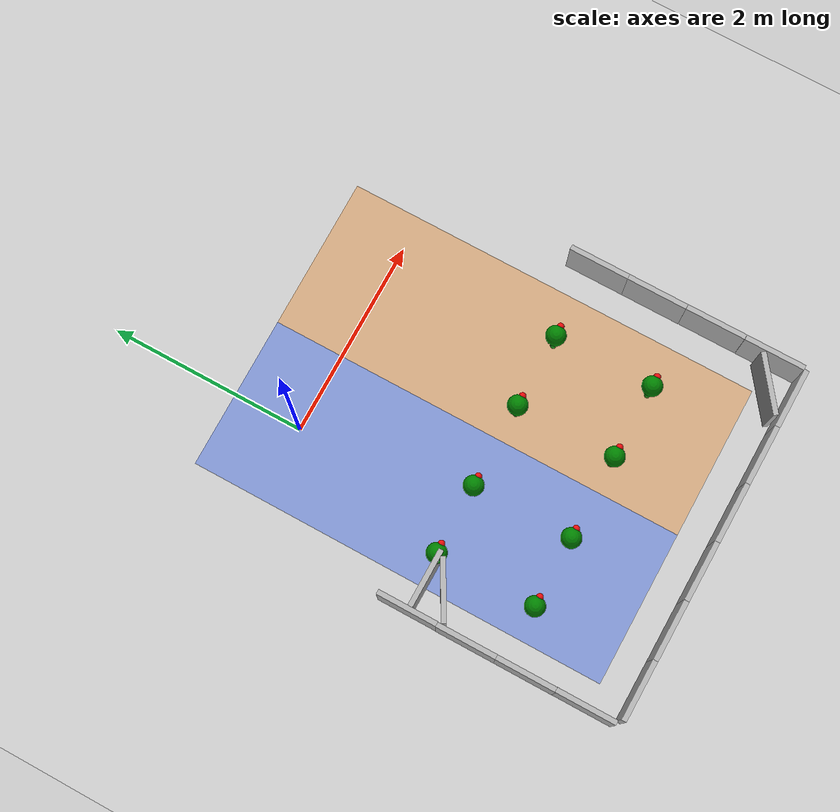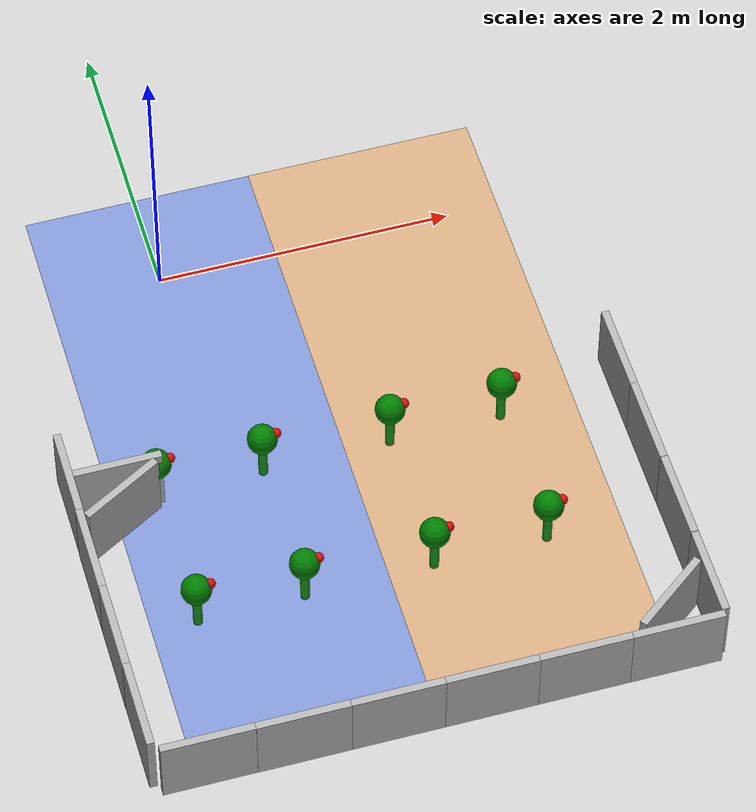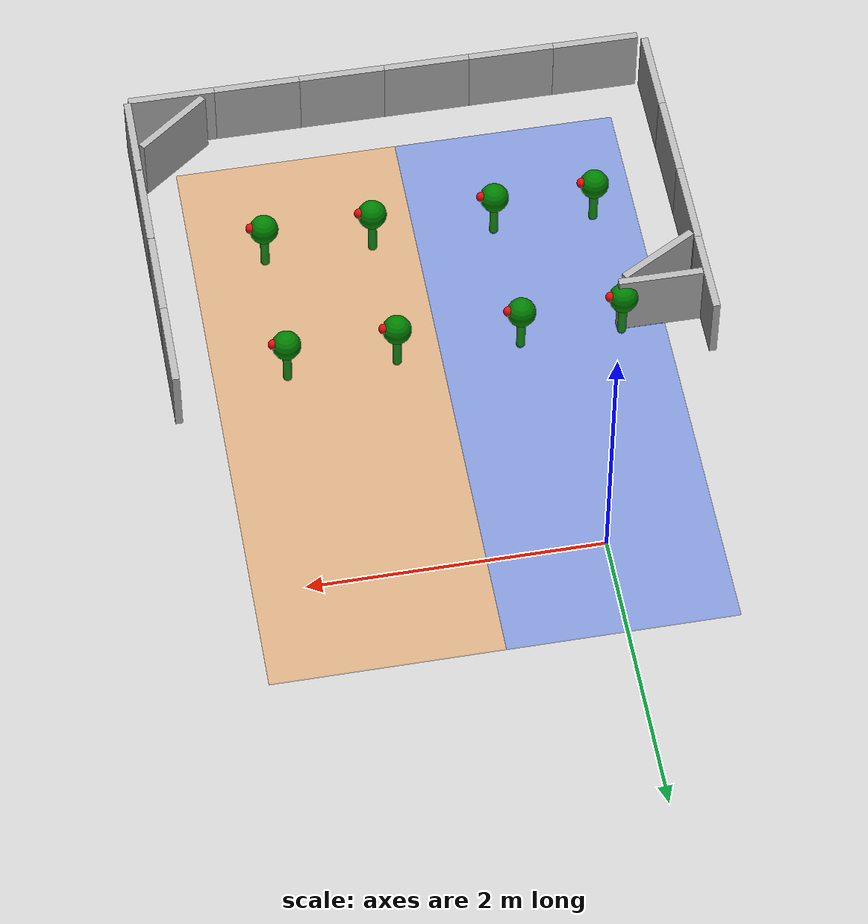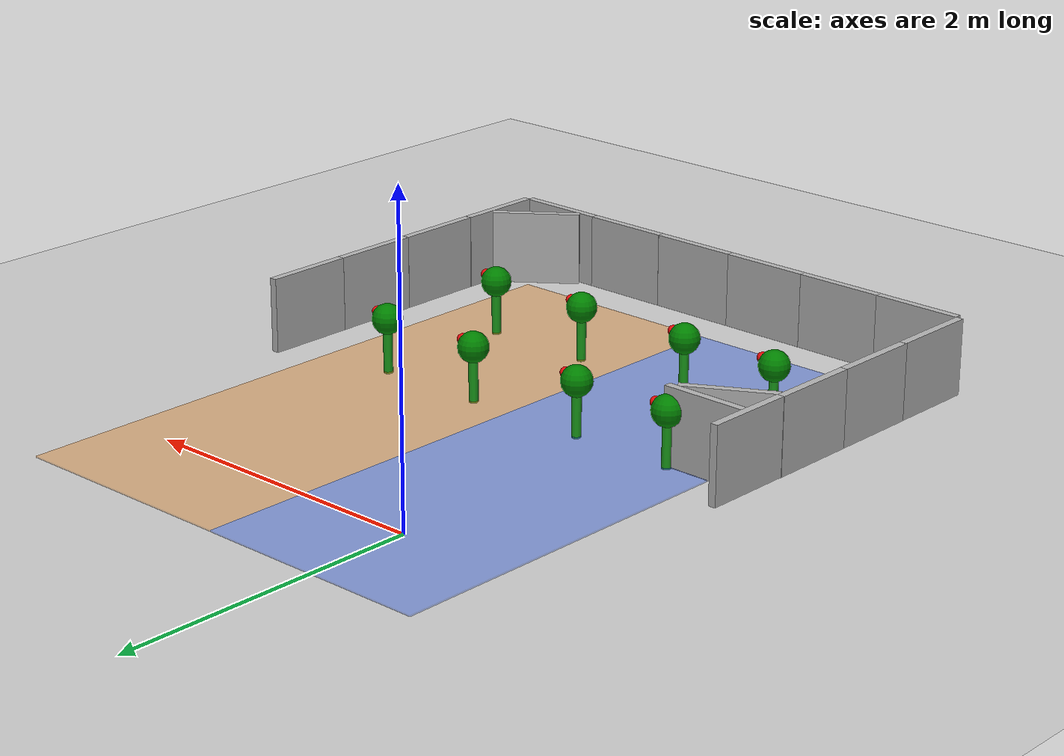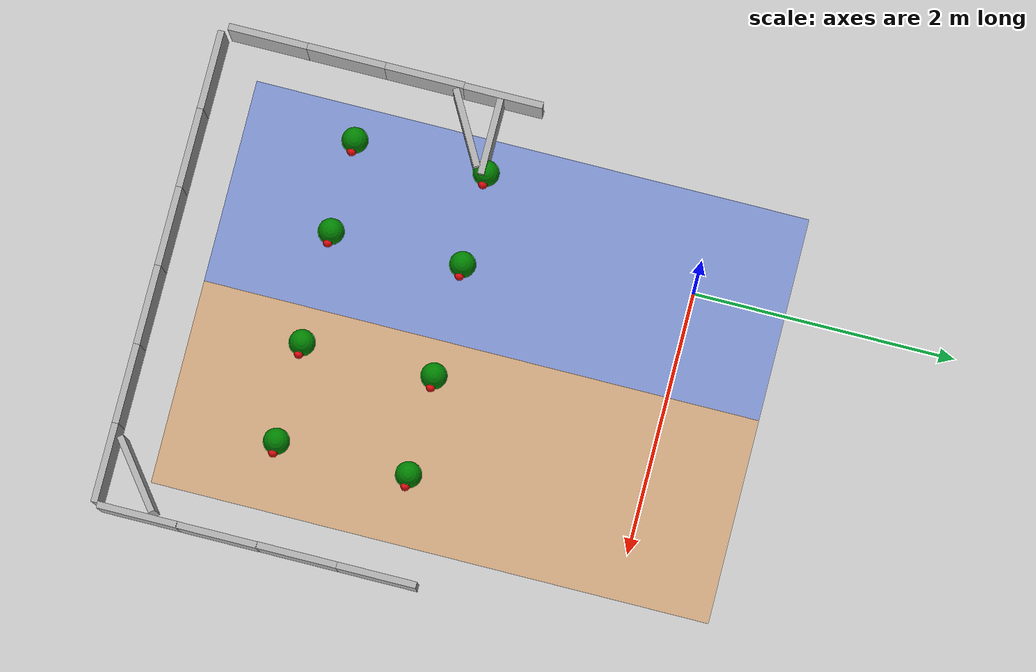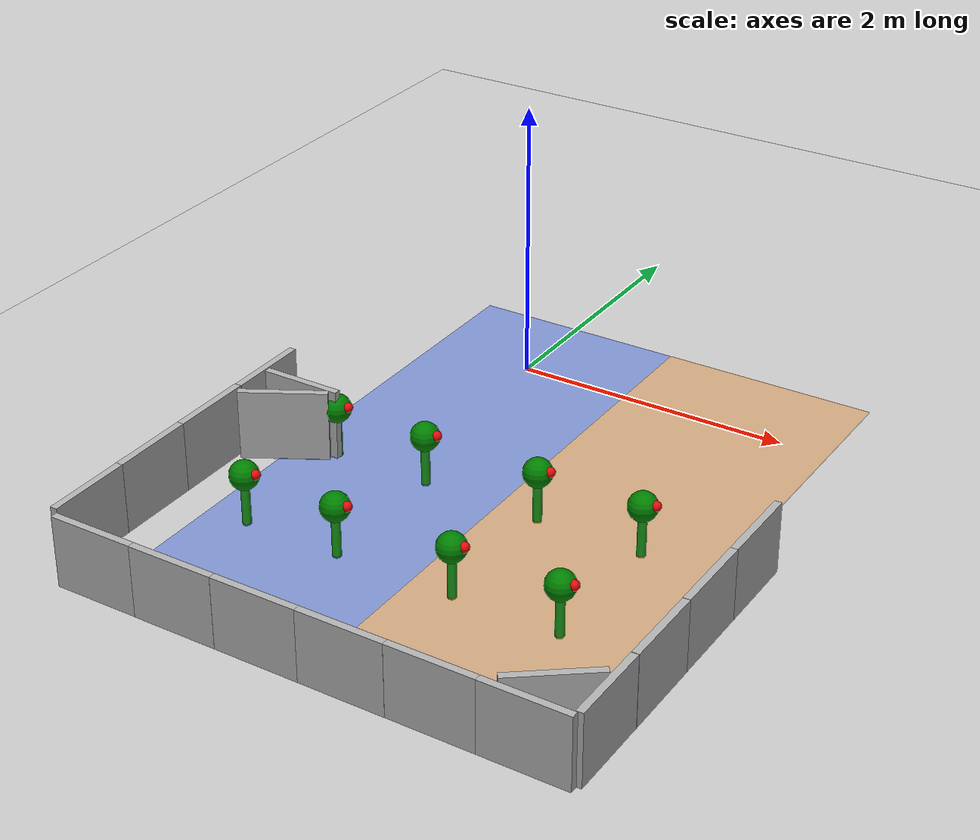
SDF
<sdf version="1.8">
 <world name="default">
  <model name="ground_plane">
   <static>true</static>
   <link name="link">
    <collision name="collision">
     <geometry><plane><normal>0 0 1</normal><size>100 100</size></plane></geometry>
    </collision>
    <visual name="visual">
     <geometry><plane><normal>0 0 1</normal><size>100 100</size></plane></geometry>
     <material>
      <ambient>0.800000012 0.800000012 0.800000012 1</ambient>
      <diffuse>0.800000012 0.800000012 0.800000012 1</diffuse>
      <specular>0.800000012 0.800000012 0.800000012 1</specular>
     </material>
    </visual>
    <inertial>
     <mass>1</mass>
     <inertia><ixx>1</ixx><ixy>0</ixy><ixz>0</ixz><iyy>1</iyy><iyz>0</iyz><izz>1</izz></inertia>
    </inertial>
   </link>
  </model>
  <model name="box_4">
   <pose>-1.0205800533294678 -1.7115800380706787 0.26702764630317688 0 0 0</pose>
   <link name="box_link">
    <inertial>
     <inertia><ixx>0.16666</ixx><ixy>0</ixy><ixz>0</ixz><iyy>0.16666</iyy><iyz>0</iyz><izz>0.16666</izz></inertia>
     <mass>1</mass>
    </inertial>
    <collision name="box_collision">
     <geometry><box><size>0.050000000000000003 0.55 0.5</size></box></geometry>
    </collision>
    <visual name="box_visual">
     <geometry><box><size>0.050000000000000003 0.59999999999999998 0.5</size></box></geometry>
     <material>
      <ambient>0.300000012 0.300000012 0.300000012 1</ambient>
      <diffuse>0.699999988 0.699999988 0.699999988 1</diffuse>
      <specular>1 1 1 1</specular>
     </material>
    </visual>
   </link>
   <static>false</static>
  </model>
  <model name="box_5">
   <pose>-1.023419976234436 -2.3114299774169922 0.26691371202468872 0 0 0</pose>
   <link name="box_link">
    <inertial>
     <inertia><ixx>0.16666</ixx><ixy>0</ixy><ixz>0</ixz><iyy>0.16666</iyy><iyz>0</iyz><izz>0.16666</izz></inertia>
     <mass>1</mass>
    </inertial>
    <collision name="box_collision">
     <geometry><box><size>0.050000000000000003 0.55 0.5</size></box></geometry>
    </collision>
    <visual name="box_visual">
     <geometry><box><size>0.050000000000000003 0.59999999999999998 0.5</size></box></geometry>
     <material>
      <ambient>0.300000012 0.300000012 0.300000012 1</ambient>
      <diffuse>0.699999988 0.699999988 0.699999988 1</diffuse>
      <specular>1 1 1 1</specular>
     </material>
    </visual>
   </link>
   <static>false</static>
  </model>
  <model name="box_6">
   <pose>-1.0233800411224365 -2.9101500511169434 0.26712024211883545 0 0 0</pose>
   <link name="box_link">
    <inertial>
     <inertia><ixx>0.16666</ixx><ixy>0</ixy><ixz>0</ixz><iyy>0.16666</iyy><iyz>0</iyz><izz>0.16666</izz></inertia>
     <mass>1</mass>
    </inertial>
    <collision name="box_collision">
     <geometry><box><size>0.050000000000000003 0.55 0.5</size></box></geometry>
    </collision>
    <visual name="box_visual">
     <geometry><box><size>0.050000000000000003 0.59999999999999998 0.5</size></box></geometry>
     <material>
      <ambient>0.300000012 0.300000012 0.300000012 1</ambient>
      <diffuse>0.699999988 0.699999988 0.699999988 1</diffuse>
      <specular>1 1 1 1</specular>
     </material>
    </visual>
   </link>
   <static>false</static>
  </model>
  <model name="box_7">
   <pose>-1.0221500396728516 -3.5036098957061768 0.26729947328567505 0 0 0</pose>
   <link name="box_link">
    <inertial>
     <inertia><ixx>0.16666</ixx><ixy>0</ixy><ixz>0</ixz><iyy>0.16666</iyy><iyz>0</iyz><izz>0.16666</izz></inertia>
     <mass>1</mass>
    </inertial>
    <collision name="box_collision">
     <geometry><box><size>0.050000000000000003 0.55 0.5</size></box></geometry>
    </collision>
    <visual name="box_visual">
     <geometry><box><size>0.050000000000000003 0.59999999999999998 0.5</size></box></geometry>
     <material>
      <ambient>0.300000012 0.300000012 0.300000012 1</ambient>
      <diffuse>0.699999988 0.699999988 0.699999988 1</diffuse>
      <specular>1 1 1 1</specular>
     </material>
    </visual>
   </link>
   <static>false</static>
  </model>
  <model name="box_13">
   <pose>2.6267948704934359 -1.7371728259073804 0.26292601227760315 0 0 0</pose>
   <link name="box_link">
    <inertial>
     <inertia><ixx>0.16666</ixx><ixy>0</ixy><ixz>0</ixz><iyy>0.16666</iyy><iyz>0</iyz><izz>0.16666</izz></inertia>
     <mass>1</mass>
    </inertial>
    <collision name="box_collision">
     <geometry><box><size>0.050000000000000003 0.55 0.5</size></box></geometry>
    </collision>
    <visual name="box_visual">
     <geometry><box><size>0.050000000000000003 0.59999999999999998 0.5</size></box></geometry>
     <material>
      <ambient>0.300000012 0.300000012 0.300000012 1</ambient>
      <diffuse>0.699999988 0.699999988 0.699999988 1</diffuse>
      <specular>1 1 1 1</specular>
     </material>
    </visual>
   </link>
   <static>false</static>
  </model>
  <model name="box_14">
   <pose>2.6267614305352369 -2.3366292042299199 0.26292601227760315 0 0 0</pose>
   <link name="box_link">
    <inertial>
     <inertia><ixx>0.16666</ixx><ixy>0</ixy><ixz>0</ixz><iyy>0.16666</iyy><iyz>0</iyz><izz>0.16666</izz></inertia>
     <mass>1</mass>
    </inertial>
    <collision name="box_collision">
     <geometry><box><size>0.050000000000000003 0.55 0.5</size></box></geometry>
    </collision>
    <visual name="box_visual">
     <geometry><box><size>0.050000000000000003 0.59999999999999998 0.5</size></box></geometry>
     <material>
      <ambient>0.300000012 0.300000012 0.300000012 1</ambient>
      <diffuse>0.699999988 0.699999988 0.699999988 1</diffuse>
      <specular>1 1 1 1</specular>
     </material>
    </visual>
   </link>
   <static>false</static>
  </model>
  <model name="box_15">
   <pose>2.6280006269886167 -2.9389073220340531 0.26292601227760315 0 0 0</pose>
   <link name="box_link">
    <inertial>
     <inertia><ixx>0.16666</ixx><ixy>0</ixy><ixz>0</ixz><iyy>0.16666</iyy><iyz>0</iyz><izz>0.16666</izz></inertia>
     <mass>1</mass>
    </inertial>
    <collision name="box_collision">
     <geometry><box><size>0.050000000000000003 0.55 0.5</size></box></geometry>
    </collision>
    <visual name="box_visual">
     <geometry><box><size>0.050000000000000003 0.59999999999999998 0.5</size></box></geometry>
     <material>
      <ambient>0.300000012 0.300000012 0.300000012 1</ambient>
      <diffuse>0.699999988 0.699999988 0.699999988 1</diffuse>
      <specular>1 1 1 1</specular>
     </material>
    </visual>
   </link>
   <static>false</static>
  </model>
  <model name="box_16">
   <pose>2.6274764676781759 -3.5421945732274764 0.26292601227760315 0 0 0</pose>
   <link name="box_link">
    <inertial>
     <inertia><ixx>0.16666</ixx><ixy>0</ixy><ixz>0</ixz><iyy>0.16666</iyy><iyz>0</iyz><izz>0.16666</izz></inertia>
     <mass>1</mass>
    </inertial>
    <collision name="box_collision">
     <geometry><box><size>0.050000000000000003 0.55 0.5</size></box></geometry>
    </collision>
    <visual name="box_visual">
     <geometry><box><size>0.050000000000000003 0.59999999999999998 0.5</size></box></geometry>
     <material>
      <ambient>0.300000012 0.300000012 0.300000012 1</ambient>
      <diffuse>0.699999988 0.699999988 0.699999988 1</diffuse>
      <specular>1 1 1 1</specular>
     </material>
    </visual>
   </link>
   <static>false</static>
  </model>
  <model name="box_8_5_1">
   <pose>2.3170975934162765 -3.8655655792473209 0.25750398635864258 0 0 1.5658000872875657</pose>
   <link name="box_link">
    <inertial>
     <inertia><ixx>0.16666</ixx><ixy>0</ixy><ixz>0</ixz><iyy>0.16666</iyy><iyz>0</iyz><izz>0.16666</izz></inertia>
     <mass>1</mass>
    </inertial>
    <collision name="box_collision">
     <geometry><box><size>0.050000000000000003 0.55 0.5</size></box></geometry>
    </collision>
    <visual name="box_visual">
     <geometry><box><size>0.050000000000000003 0.59999999999999998 0.5</size></box></geometry>
     <material>
      <ambient>0.300000012 0.300000012 0.300000012 1</ambient>
      <diffuse>0.699999988 0.699999988 0.699999988 1</diffuse>
      <specular>1 1 1 1</specular>
     </material>
    </visual>
   </link>
   <static>false</static>
  </model>
  <model name="box_8_5_2">
   <pose>1.7183380653296056 -3.862349183830966 0.25750398635864258 0 0 1.5658000872875657</pose>
   <link name="box_link">
    <inertial>
     <inertia><ixx>0.16666</ixx><ixy>0</ixy><ixz>0</ixz><iyy>0.16666</iyy><iyz>0</iyz><izz>0.16666</izz></inertia>
     <mass>1</mass>
    </inertial>
    <collision name="box_collision">
     <geometry><box><size>0.050000000000000003 0.55 0.5</size></box></geometry>
    </collision>
    <visual name="box_visual">
     <geometry><box><size>0.050000000000000003 0.59999999999999998 0.5</size></box></geometry>
     <material>
      <ambient>0.300000012 0.300000012 0.300000012 1</ambient>
      <diffuse>0.699999988 0.699999988 0.699999988 1</diffuse>
      <specular>1 1 1 1</specular>
     </material>
    </visual>
   </link>
   <static>false</static>
  </model>
  <model name="box_8_5_3">
   <pose>1.1190764522698835 -3.8600206948799998 0.25750398635864258 0 0 1.5658000872875657</pose>
   <link name="box_link">
    <inertial>
     <inertia><ixx>0.16666</ixx><ixy>0</ixy><ixz>0</ixz><iyy>0.16666</iyy><iyz>0</iyz><izz>0.16666</izz></inertia>
     <mass>1</mass>
    </inertial>
    <collision name="box_collision">
     <geometry><box><size>0.050000000000000003 0.55 0.5</size></box></geometry>
    </collision>
    <visual name="box_visual">
     <geometry><box><size>0.050000000000000003 0.59999999999999998 0.5</size></box></geometry>
     <material>
      <ambient>0.300000012 0.300000012 0.300000012 1</ambient>
      <diffuse>0.699999988 0.699999988 0.699999988 1</diffuse>
      <specular>1 1 1 1</specular>
     </material>
    </visual>
   </link>
   <static>false</static>
  </model>
  <model name="box_8_5_4">
   <pose>0.52016775223423839 -3.8568482565905109 0.25750398635864258 0 0 1.5658000872875657</pose>
   <link name="box_link">
    <inertial>
     <inertia><ixx>0.16666</ixx><ixy>0</ixy><ixz>0</ixz><iyy>0.16666</iyy><iyz>0</iyz><izz>0.16666</izz></inertia>
     <mass>1</mass>
    </inertial>
    <collision name="box_collision">
     <geometry><box><size>0.050000000000000003 0.55 0.5</size></box></geometry>
    </collision>
    <visual name="box_visual">
     <geometry><box><size>0.050000000000000003 0.59999999999999998 0.5</size></box></geometry>
     <material>
      <ambient>0.300000012 0.300000012 0.300000012 1</ambient>
      <diffuse>0.699999988 0.699999988 0.699999988 1</diffuse>
      <specular>1 1 1 1</specular>
     </material>
    </visual>
   </link>
   <static>false</static>
  </model>
  <model name="box_8_5_5">
   <pose>-0.080121158882265009 -3.8538894517536315 0.25750398635864258 0 0 1.5658000872875657</pose>
   <link name="box_link">
    <inertial>
     <inertia><ixx>0.16666</ixx><ixy>0</ixy><ixz>0</ixz><iyy>0.16666</iyy><iyz>0</iyz><izz>0.16666</izz></inertia>
     <mass>1</mass>
    </inertial>
    <collision name="box_collision">
     <geometry><box><size>0.050000000000000003 0.55 0.5</size></box></geometry>
    </collision>
    <visual name="box_visual">
     <geometry><box><size>0.050000000000000003 0.59999999999999998 0.5</size></box></geometry>
     <material>
      <ambient>0.300000012 0.300000012 0.300000012 1</ambient>
      <diffuse>0.699999988 0.699999988 0.699999988 1</diffuse>
      <specular>1 1 1 1</specular>
     </material>
    </visual>
   </link>
   <static>false</static>
  </model>
  <model name="box_8_5_6">
   <pose>-0.67984316614260165 -3.8498007437380806 0.25750398635864258 0 0 1.5658000872875657</pose>
   <link name="box_link">
    <inertial>
     <inertia><ixx>0.16666</ixx><ixy>0</ixy><ixz>0</ixz><iyy>0.16666</iyy><iyz>0</iyz><izz>0.16666</izz></inertia>
     <mass>1</mass>
    </inertial>
    <collision name="box_collision">
     <geometry><box><size>0.050000000000000003 0.55 0.5</size></box></geometry>
    </collision>
    <visual name="box_visual">
     <geometry><box><size>0.050000000000000003 0.59999999999999998 0.5</size></box></geometry>
     <material>
      <ambient>0.300000012 0.300000012 0.300000012 1</ambient>
      <diffuse>0.699999988 0.699999988 0.699999988 1</diffuse>
      <specular>1 1 1 1</specular>
     </material>
    </visual>
   </link>
   <static>false</static>
  </model>
  <model name="box_8_5_7">
   <pose>-0.71799231176185963 -1.7295482278429848 0.25750398635864258 0 0 1.5658000872875657</pose>
   <link name="box_link">
    <inertial>
     <inertia><ixx>0.16666</ixx><ixy>0</ixy><ixz>0</ixz><iyy>0.16666</iyy><iyz>0</iyz><izz>0.16666</izz></inertia>
     <mass>1</mass>
    </inertial>
    <collision name="box_collision">
     <geometry><box><size>0.050000000000000003 0.55 0.5</size></box></geometry>
    </collision>
    <visual name="box_visual">
     <geometry><box><size>0.050000000000000003 0.59999999999999998 0.5</size></box></geometry>
     <material>
      <ambient>0.300000012 0.300000012 0.300000012 1</ambient>
      <diffuse>0.699999988 0.699999988 0.699999988 1</diffuse>
      <specular>1 1 1 1</specular>
     </material>
    </visual>
   </link>
   <static>false</static>
  </model>
  <model name="box_1_2_3">
   <pose>2.3426086092275002 -3.6236037284401896 0.26661500334739685 0 0 -0.9211320022812256</pose>
   <link name="box_link">
    <inertial>
     <inertia><ixx>0.16666</ixx><ixy>0</ixy><ixz>0</ixz><iyy>0.16666</iyy><iyz>0</iyz><izz>0.16666</izz></inertia>
     <mass>1</mass>
    </inertial>
    <collision name="box_collision">
     <geometry><box><size>0.050000000000000003 0.55 0.5</size></box></geometry>
    </collision>
    <visual name="box_visual">
     <geometry><box><size>0.050000000000000003 0.59999999999999998 0.5</size></box></geometry>
     <material>
      <ambient>0.300000012 0.300000012 0.300000012 1</ambient>
      <diffuse>0.699999988 0.699999988 0.699999988 1</diffuse>
      <specular>1 1 1 1</specular>
     </material>
    </visual>
   </link>
   <static>false</static>
  </model>
  <model name="box_8_5_8_3">
   <pose>-0.72633250227749258 -1.9181128806837573 0.25750398635864258 0 0 2.0823900577787207</pose>
   <link name="box_link">
    <inertial>
     <inertia><ixx>0.16666</ixx><ixy>0</ixy><ixz>0</ixz><iyy>0.16666</iyy><iyz>0</iyz><izz>0.16666</izz></inertia>
     <mass>1</mass>
    </inertial>
    <collision name="box_collision">
     <geometry><box><size>0.050000000000000003 0.55 0.5</size></box></geometry>
    </collision>
    <visual name="box_visual">
     <geometry><box><size>0.050000000000000003 0.59999999999999998 0.5</size></box></geometry>
     <material>
      <ambient>0.300000012 0.300000012 0.300000012 1</ambient>
      <diffuse>0.699999988 0.699999988 0.699999988 1</diffuse>
      <specular>1 1 1 1</specular>
     </material>
    </visual>
   </link>
   <static>false</static>
  </model>
  <model name="zone_a_marker">
   <static>true</static>
   <pose>0.025 -1.425 0.005 0 0 0</pose>
   <link name="link">
    <visual name="visual">
     <geometry><box><size>1.55 4.25 0.01</size></box></geometry>
     <material><ambient>0.1 0.3 0.9 0.4</ambient><diffuse>0.1 0.3 0.9 0.4</diffuse></material>
    </visual>
   </link>
  </model>
  <model name="zone_b_marker">
   <static>true</static>
   <pose>1.575 -1.425 0.006 0 0 0</pose>
   <link name="link">
    <visual name="visual">
     <geometry><box><size>1.55 4.25 0.01</size></box></geometry>
     <material><ambient>0.9 0.5 0.1 0.4</ambient><diffuse>0.9 0.5 0.1 0.4</diffuse></material>
    </visual>
   </link>
  </model>
  <model name="plant_a3">
   <static>true</static>
   <pose>-0.45 -1.70 0.0 0 0 0</pose>
   <link name="link">
    <visual name="stem">
     <pose>0 0 0.15 0 0 0</pose>
     <geometry><cylinder><radius>0.03</radius><length>0.30</length></cylinder></geometry>
     <material><ambient>0.1 0.5 0.1 1</ambient><diffuse>0.1 0.6 0.1 1</diffuse></material>
    </visual>
    <visual name="canopy">
     <pose>0 0 0.36 0 0 0</pose>
     <geometry><sphere><radius>0.10</radius></sphere></geometry>
     <material><ambient>0.0 0.40 0.0 1</ambient><diffuse>0.0 0.50 0.0 1</diffuse></material>
    </visual>
    <visual name="berry">
     <pose>0.09 0 0.39 0 0 0</pose>
     <geometry><sphere><radius>0.035</radius></sphere></geometry>
     <material><ambient>0.85 0.05 0.05 1</ambient><diffuse>0.9 0.05 0.05 1</diffuse></material>
    </visual>
   </link>
  </model>
  <model name="plant_a4">
   <static>true</static>
   <pose>-0.45 -2.70 0.0 0 0 0</pose>
   <link name="link">
    <visual name="stem">
     <pose>0 0 0.15 0 0 0</pose>
     <geometry><cylinder><radius>0.03</radius><length>0.30</length></cylinder></geometry>
     <material><ambient>0.1 0.5 0.1 1</ambient><diffuse>0.1 0.6 0.1 1</diffuse></material>
    </visual>
    <visual name="canopy">
     <pose>0 0 0.36 0 0 0</pose>
     <geometry><sphere><radius>0.10</radius></sphere></geometry>
     <material><ambient>0.0 0.40 0.0 1</ambient><diffuse>0.0 0.50 0.0 1</diffuse></material>
    </visual>
    <visual name="berry">
     <pose>0.09 0 0.39 0 0 0</pose>
     <geometry><sphere><radius>0.035</radius></sphere></geometry>
     <material><ambient>0.85 0.05 0.05 1</ambient><diffuse>0.9 0.05 0.05 1</diffuse></material>
    </visual>
   </link>
  </model>
  <model name="plant_a7">
   <static>true</static>
   <pose>0.25 -1.70 0.0 0 0 0</pose>
   <link name="link">
    <visual name="stem">
     <pose>0 0 0.15 0 0 0</pose>
     <geometry><cylinder><radius>0.03</radius><length>0.30</length></cylinder></geometry>
     <material><ambient>0.1 0.5 0.1 1</ambient><diffuse>0.1 0.6 0.1 1</diffuse></material>
    </visual>
    <visual name="canopy">
     <pose>0 0 0.36 0 0 0</pose>
     <geometry><sphere><radius>0.10</radius></sphere></geometry>
     <material><ambient>0.0 0.40 0.0 1</ambient><diffuse>0.0 0.50 0.0 1</diffuse></material>
    </visual>
    <visual name="berry">
     <pose>0.09 0 0.39 0 0 0</pose>
     <geometry><sphere><radius>0.035</radius></sphere></geometry>
     <material><ambient>0.85 0.05 0.05 1</ambient><diffuse>0.9 0.05 0.05 1</diffuse></material>
    </visual>
   </link>
  </model>
  <model name="plant_a8">
   <static>true</static>
   <pose>0.25 -2.70 0.0 0 0 0</pose>
   <link name="link">
    <visual name="stem">
     <pose>0 0 0.15 0 0 0</pose>
     <geometry><cylinder><radius>0.03</radius><length>0.30</length></cylinder></geometry>
     <material><ambient>0.1 0.5 0.1 1</ambient><diffuse>0.1 0.6 0.1 1</diffuse></material>
    </visual>
    <visual name="canopy">
     <pose>0 0 0.36 0 0 0</pose>
     <geometry><sphere><radius>0.10</radius></sphere></geometry>
     <material><ambient>0.0 0.40 0.0 1</ambient><diffuse>0.0 0.50 0.0 1</diffuse></material>
    </visual>
    <visual name="berry">
     <pose>0.09 0 0.39 0 0 0</pose>
     <geometry><sphere><radius>0.035</radius></sphere></geometry>
     <material><ambient>0.85 0.05 0.05 1</ambient><diffuse>0.9 0.05 0.05 1</diffuse></material>
    </visual>
   </link>
  </model>
  <model name="plant_b3">
   <static>true</static>
   <pose>1.10 -1.70 0.0 0 0 0</pose>
   <link name="link">
    <visual name="stem">
     <pose>0 0 0.15 0 0 0</pose>
     <geometry><cylinder><radius>0.03</radius><length>0.30</length></cylinder></geometry>
     <material><ambient>0.1 0.5 0.1 1</ambient><diffuse>0.1 0.6 0.1 1</diffuse></material>
    </visual>
    <visual name="canopy">
     <pose>0 0 0.36 0 0 0</pose>
     <geometry><sphere><radius>0.10</radius></sphere></geometry>
     <material><ambient>0.0 0.40 0.0 1</ambient><diffuse>0.0 0.50 0.0 1</diffuse></material>
    </visual>
    <visual name="berry">
     <pose>0.09 0 0.39 0 0 0</pose>
     <geometry><sphere><radius>0.035</radius></sphere></geometry>
     <material><ambient>0.85 0.05 0.05 1</ambient><diffuse>0.9 0.05 0.05 1</diffuse></material>
    </visual>
   </link>
  </model>
  <model name="plant_b4">
   <static>true</static>
   <pose>1.10 -2.70 0.0 0 0 0</pose>
   <link name="link">
    <visual name="stem">
     <pose>0 0 0.15 0 0 0</pose>
     <geometry><cylinder><radius>0.03</radius><length>0.30</length></cylinder></geometry>
     <material><ambient>0.1 0.5 0.1 1</ambient><diffuse>0.1 0.6 0.1 1</diffuse></material>
    </visual>
    <visual name="canopy">
     <pose>0 0 0.36 0 0 0</pose>
     <geometry><sphere><radius>0.10</radius></sphere></geometry>
     <material><ambient>0.0 0.40 0.0 1</ambient><diffuse>0.0 0.50 0.0 1</diffuse></material>
    </visual>
    <visual name="berry">
     <pose>0.09 0 0.39 0 0 0</pose>
     <geometry><sphere><radius>0.035</radius></sphere></geometry>
     <material><ambient>0.85 0.05 0.05 1</ambient><diffuse>0.9 0.05 0.05 1</diffuse></material>
    </visual>
   </link>
  </model>
  <model name="plant_b7">
   <static>true</static>
   <pose>1.85 -1.70 0.0 0 0 0</pose>
   <link name="link">
    <visual name="stem">
     <pose>0 0 0.15 0 0 0</pose>
     <geometry><cylinder><radius>0.03</radius><length>0.30</length></cylinder></geometry>
     <material><ambient>0.1 0.5 0.1 1</ambient><diffuse>0.1 0.6 0.1 1</diffuse></material>
    </visual>
    <visual name="canopy">
     <pose>0 0 0.36 0 0 0</pose>
     <geometry><sphere><radius>0.10</radius></sphere></geometry>
     <material><ambient>0.0 0.40 0.0 1</ambient><diffuse>0.0 0.50 0.0 1</diffuse></material>
    </visual>
    <visual name="berry">
     <pose>0.09 0 0.39 0 0 0</pose>
     <geometry><sphere><radius>0.035</radius></sphere></geometry>
     <material><ambient>0.85 0.05 0.05 1</ambient><diffuse>0.9 0.05 0.05 1</diffuse></material>
    </visual>
   </link>
  </model>
  <model name="plant_b8">
   <static>true</static>
   <pose>1.85 -2.70 0.0 0 0 0</pose>
   <link name="link">
    <visual name="stem">
     <pose>0 0 0.15 0 0 0</pose>
     <geometry><cylinder><radius>0.03</radius><length>0.30</length></cylinder></geometry>
     <material><ambient>0.1 0.5 0.1 1</ambient><diffuse>0.1 0.6 0.1 1</diffuse></material>
    </visual>
    <visual name="canopy">
     <pose>0 0 0.36 0 0 0</pose>
     <geometry><sphere><radius>0.10</radius></sphere></geometry>
     <material><ambient>0.0 0.40 0.0 1</ambient><diffuse>0.0 0.50 0.0 1</diffuse></material>
    </visual>
    <visual name="berry">
     <pose>0.09 0 0.39 0 0 0</pose>
     <geometry><sphere><radius>0.035</radius></sphere></geometry>
     <material><ambient>0.85 0.05 0.05 1</ambient><diffuse>0.9 0.05 0.05 1</diffuse></material>
    </visual>
   </link>
  </model>
 </world>
</sdf>
